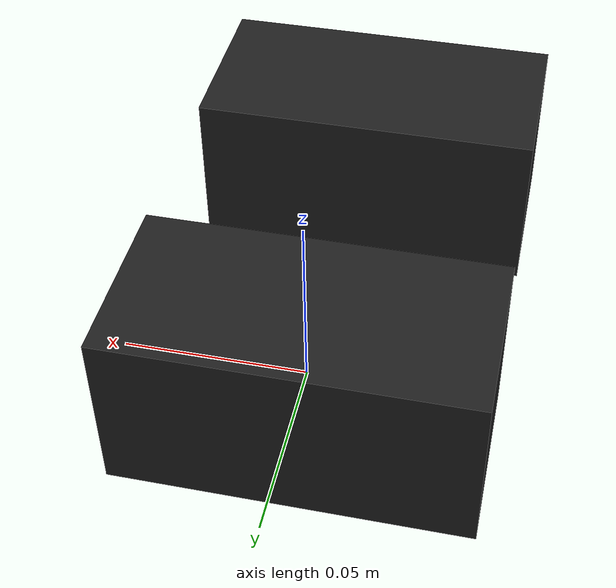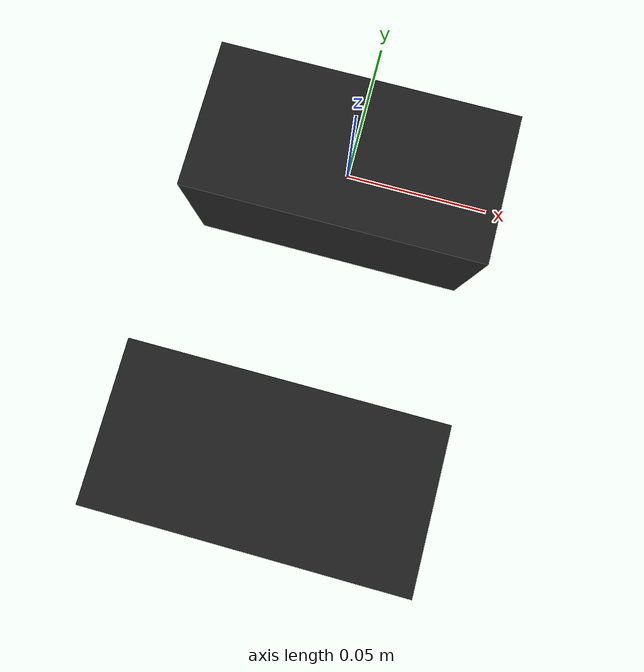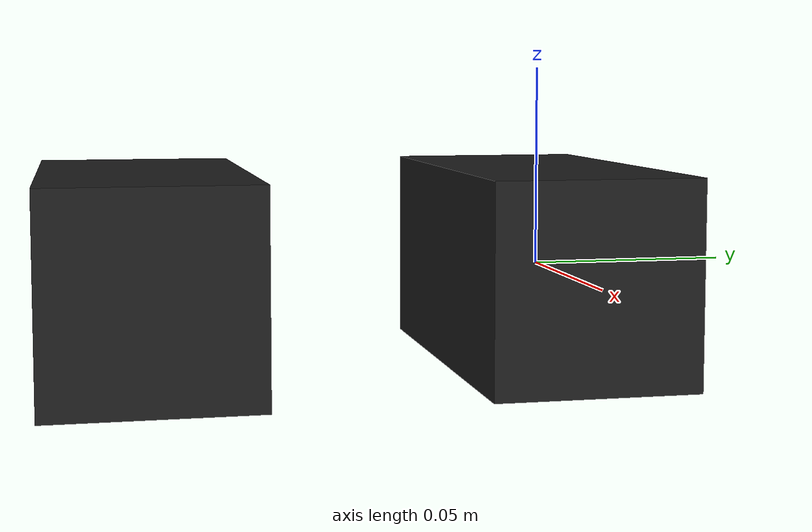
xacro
<?xml version="1.0"?>
<robot name="flying_stereo_cam" xmlns:xacro="http://www.ros.org/wiki/xacro">
  <!--xacro:include filename="$(find mir_hardware_config)/youbot-brsu-2/urdf/robot.urdf.xacro" /-->
  <xacro:property name="PI" value="3.1415926535897931"/>

  <xacro:property name="cameraSize" value="0.05"/>
  <xacro:property name="cameraMass" value="0.1"/>

  <xacro:include filename="$(find ig_youbot_ros_implementation)/model/flying_stereo_cam.gazebo" />
  <xacro:include filename="$(find ig_youbot_ros_implementation)/model/materials.xacro" />
  <xacro:include filename="$(find ig_youbot_ros_implementation)/model/macros.xacro" />

  <!--xacro:macro name="flying_stereo_cam" params="name parent *origin" -->
   <link name="base_camera" />
     <joint name="base_fix" type="fixed">
      <origin xyz="0 0 0" rpy="0 0 0" />
      <parent link="base_camera"/>
      <child link="camera" />
     </joint>

     <link name="camera">
      <collision>
	    <origin xyz="0 0 0" rpy="0 0 0"/>
	      <geometry>
	        <box size="${cameraSize*2} ${cameraSize} ${cameraSize}"/>
	      </geometry>
       </collision>

       <visual>
	    <origin xyz="0 0 0" rpy="0 0 0"/>
	    <geometry>
	      <box size="${cameraSize*2} ${cameraSize} ${cameraSize}"/>
	    </geometry>
	   <material name="Black"/>
       </visual>

       <inertial>
	     <mass value="${cameraMass}" />
	     <origin xyz="0 0 0" rpy="0 0 0"/>
	     <box_inertia m="${cameraMass*2}" x="${cameraSize}" y="${cameraSize}" z="${cameraSize}" />
       </inertial>

     </link>

     <joint name="cameramount2" type="fixed">
       <!-- camera pointing forward or sideways -->
       <origin xyz="0 -0.10 0" rpy="0 0 0" />
       <parent link="camera"/>
       <child link="camera2" />
     </joint>

     <link name="camera2">
       <collision>
	     <origin xyz="0 0 0" rpy="0 0 0"/>
	     <geometry>
	       <box size="${cameraSize*2*0} ${cameraSize*0} ${cameraSize*0}"/>
	     </geometry>
       </collision>

      <visual>
	    <origin xyz="0 0 0" rpy="0 0 0"/>
	    <geometry>
	      <box size="${cameraSize*2} ${cameraSize} ${cameraSize}"/>
	    </geometry>
	    <material name="Black"/>
      </visual>

      <inertial>
	    <mass value="${cameraMass}" />
	    <origin xyz="0 0 0" rpy="0 0 0"/>
	    <box_inertia m="${cameraMass*2}" x="${cameraSize}" y="${cameraSize}" z="${cameraSize}" />
      </inertial>
   </link>

  <!--/xacro:macro-->

</robot>
